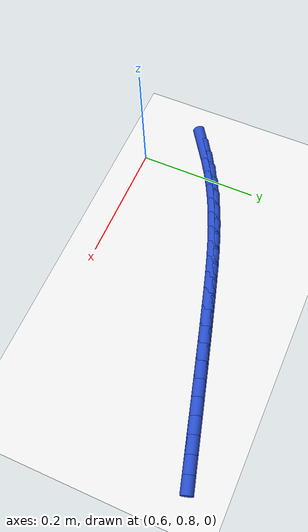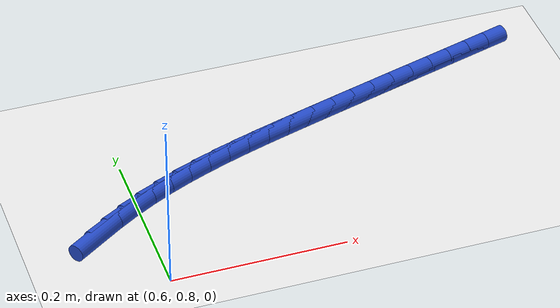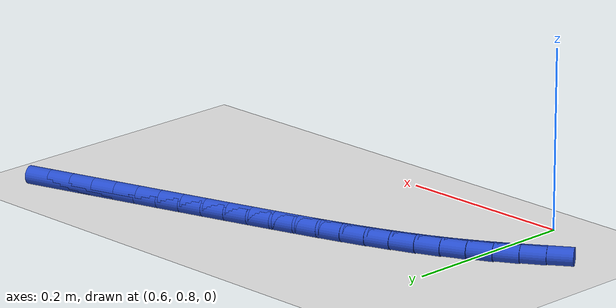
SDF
<sdf version="1.6">
 <world name="default">
  <model name="ground_plane">
   <static>1</static>
   <link name="link">
    <collision name="collision">
     <geometry><plane><normal>0 0 1</normal><size>100 100</size></plane></geometry>
     <surface><friction><ode><mu>100</mu><mu2>50</mu2></ode></friction></surface>
    </collision>
    <visual name="visual">
     <cast_shadows>0</cast_shadows>
     <geometry><plane><normal>0 0 1</normal><size>100 100</size></plane></geometry>
     <material>
      <script><uri>file://media/materials/scripts/gazebo.material</uri><name>Gazebo/WhiteGlow</name></script>
     </material>
    </visual>
   </link>
  </model>
  <model name="line">
   <link name="link_39">
    <pose>0.5456862348082888 0.8877988327917317 0.01 0 1.57 0.6042914383586098</pose>
    <collision name="collision">
     <geometry><cylinder><radius>0.01</radius><length>0.08</length></cylinder></geometry>
    </collision>
    <visual name="visual">
     <material>
      <script><name>Gazebo/Blue</name><uri>file://media/materials/scripts/gazebo.material</uri></script>
     </material>
     <geometry><cylinder><radius>0.01</radius><length>0.08</length></cylinder></geometry>
    </visual>
   </link>
   <link name="link_40">
    <pose>0.5684032880335538 0.9034839452018167 0.01 0 1.57 0.5632000857672532</pose>
    <collision name="collision">
     <geometry><cylinder><radius>0.01</radius><length>0.08</length></cylinder></geometry>
    </collision>
    <visual name="visual">
     <material>
      <script><name>Gazebo/Blue</name><uri>file://media/materials/scripts/gazebo.material</uri></script>
     </material>
     <geometry><cylinder><radius>0.01</radius><length>0.08</length></cylinder></geometry>
    </visual>
   </link>
   <link name="link_41">
    <pose>0.59169240700965 0.918189077843096 0.01 0 1.57 0.5182143457511004</pose>
    <collision name="collision">
     <geometry><cylinder><radius>0.01</radius><length>0.08</length></cylinder></geometry>
    </collision>
    <visual name="visual">
     <material>
      <script><name>Gazebo/Blue</name><uri>file://media/materials/scripts/gazebo.material</uri></script>
     </material>
     <geometry><cylinder><radius>0.01</radius><length>0.08</length></cylinder></geometry>
    </visual>
   </link>
   <link name="link_42">
    <pose>0.6155783056276274 0.9318086550353273 0.01 0 1.57 0.47098109817317413</pose>
    <collision name="collision">
     <geometry><cylinder><radius>0.01</radius><length>0.08</length></cylinder></geometry>
    </collision>
    <visual name="visual">
     <material>
      <script><name>Gazebo/Blue</name><uri>file://media/materials/scripts/gazebo.material</uri></script>
     </material>
     <geometry><cylinder><radius>0.01</radius><length>0.08</length></cylinder></geometry>
    </visual>
   </link>
   <link name="link_43">
    <pose>0.6400674185866904 0.9442785300454983 0.01 0 1.57 0.4280184535754709</pose>
    <collision name="collision">
     <geometry><cylinder><radius>0.01</radius><length>0.08</length></cylinder></geometry>
    </collision>
    <visual name="visual">
     <material>
      <script><name>Gazebo/Blue</name><uri>file://media/materials/scripts/gazebo.material</uri></script>
     </material>
     <geometry><cylinder><radius>0.01</radius><length>0.08</length></cylinder></geometry>
    </visual>
   </link>
   <link name="link_44">
    <pose>0.6650946873046958 0.9556965923731204 0.01 0 1.57 0.3909691670549991</pose>
    <collision name="collision">
     <geometry><cylinder><radius>0.01</radius><length>0.08</length></cylinder></geometry>
    </collision>
    <visual name="visual">
     <material>
      <script><name>Gazebo/Blue</name><uri>file://media/materials/scripts/gazebo.material</uri></script>
     </material>
     <geometry><cylinder><radius>0.01</radius><length>0.08</length></cylinder></geometry>
    </visual>
   </link>
   <link name="link_45">
    <pose>0.690577576778318 0.9662003410221667 0.01 0 1.57 0.3598194669974591</pose>
    <collision name="collision">
     <geometry><cylinder><radius>0.01</radius><length>0.08</length></cylinder></geometry>
    </collision>
    <visual name="visual">
     <material>
      <script><name>Gazebo/Blue</name><uri>file://media/materials/scripts/gazebo.material</uri></script>
     </material>
     <geometry><cylinder><radius>0.01</radius><length>0.08</length></cylinder></geometry>
    </visual>
   </link>
   <link name="link_46">
    <pose>0.7164335520042314 0.9759272749966104 0.01 0 1.57 0.33450394375181675</pose>
    <collision name="collision">
     <geometry><cylinder><radius>0.01</radius><length>0.08</length></cylinder></geometry>
    </collision>
    <visual name="visual">
     <material>
      <script><name>Gazebo/Blue</name><uri>file://media/materials/scripts/gazebo.material</uri></script>
     </material>
     <geometry><cylinder><radius>0.01</radius><length>0.08</length></cylinder></geometry>
    </visual>
   </link>
   <link name="link_47">
    <pose>0.7425800779791099 0.9850148933004245 0.01 0 1.57 0.31493787355434993</pose>
    <collision name="collision">
     <geometry><cylinder><radius>0.01</radius><length>0.08</length></cylinder></geometry>
    </collision>
    <visual name="visual">
     <material>
      <script><name>Gazebo/Blue</name><uri>file://media/materials/scripts/gazebo.material</uri></script>
     </material>
     <geometry><cylinder><radius>0.01</radius><length>0.08</length></cylinder></geometry>
    </visual>
   </link>
   <link name="link_48">
    <pose>0.7689346196996277 0.9936006949375817 0.01 0 1.57 0.3010423763997181</pose>
    <collision name="collision">
     <geometry><cylinder><radius>0.01</radius><length>0.08</length></cylinder></geometry>
    </collision>
    <visual name="visual">
     <material>
      <script><name>Gazebo/Blue</name><uri>file://media/materials/scripts/gazebo.material</uri></script>
     </material>
     <geometry><cylinder><radius>0.01</radius><length>0.08</length></cylinder></geometry>
    </visual>
   </link>
   <link name="link_49">
    <pose>0.7954146421624592 1.0018221789120556 0.01 0 1.57 0.29276291644287655</pose>
    <collision name="collision">
     <geometry><cylinder><radius>0.01</radius><length>0.08</length></cylinder></geometry>
    </collision>
    <visual name="visual">
     <material>
      <script><name>Gazebo/Blue</name><uri>file://media/materials/scripts/gazebo.material</uri></script>
     </material>
     <geometry><cylinder><radius>0.01</radius><length>0.08</length></cylinder></geometry>
    </visual>
   </link>
   <link name="link_50">
    <pose>0.8219376103642783 1.0098168442278193 0.01 0 1.57 0.2892614484721174</pose>
    <collision name="collision">
     <geometry><cylinder><radius>0.01</radius><length>0.08</length></cylinder></geometry>
    </collision>
    <visual name="visual">
     <material>
      <script><name>Gazebo/Blue</name><uri>file://media/materials/scripts/gazebo.material</uri></script>
     </material>
     <geometry><cylinder><radius>0.01</radius><length>0.08</length></cylinder></geometry>
    </visual>
   </link>
   <link name="link_51">
    <pose>0.8484354526333956 1.0177028311336134 0.01 0 1.57 0.28704382290385205</pose>
    <collision name="collision">
     <geometry><cylinder><radius>0.01</radius><length>0.08</length></cylinder></geometry>
    </collision>
    <visual name="visual">
     <material>
      <script><name>Gazebo/Blue</name><uri>file://media/materials/scripts/gazebo.material</uri></script>
     </material>
     <geometry><cylinder><radius>0.01</radius><length>0.08</length></cylinder></geometry>
    </visual>
   </link>
   <link name="link_52">
    <pose>0.8749018591012089 1.0255156134733148 0.01 0 1.57 0.2851813638733168</pose>
    <collision name="collision">
     <geometry><cylinder><radius>0.01</radius><length>0.08</length></cylinder></geometry>
    </collision>
    <visual name="visual">
     <material>
      <script><name>Gazebo/Blue</name><uri>file://media/materials/scripts/gazebo.material</uri></script>
     </material>
     <geometry><cylinder><radius>0.01</radius><length>0.08</length></cylinder></geometry>
    </visual>
   </link>
   <link name="link_53">
    <pose>0.9013470025895353 1.033268603481664 0.01 0 1.57 0.2836782668128358</pose>
    <collision name="collision">
     <geometry><cylinder><radius>0.01</radius><length>0.08</length></cylinder></geometry>
    </collision>
    <visual name="visual">
     <material>
      <script><name>Gazebo/Blue</name><uri>file://media/materials/scripts/gazebo.material</uri></script>
     </material>
     <geometry><cylinder><radius>0.01</radius><length>0.08</length></cylinder></geometry>
    </visual>
   </link>
   <link name="link_54">
    <pose>0.9277810560799484 1.04097521317957 0.01 0 1.57 0.28253768203652496</pose>
    <collision name="collision">
     <geometry><cylinder><radius>0.01</radius><length>0.08</length></cylinder></geometry>
    </collision>
    <visual name="visual">
     <material>
      <script><name>Gazebo/Blue</name><uri>file://media/materials/scripts/gazebo.material</uri></script>
     </material>
     <geometry><cylinder><radius>0.01</radius><length>0.08</length></cylinder></geometry>
    </visual>
   </link>
   <link name="link_55">
    <pose>0.954214192554023 1.0486488545879422 0.01 0 1.57 0.28176169145840424</pose>
    <collision name="collision">
     <geometry><cylinder><radius>0.01</radius><length>0.08</length></cylinder></geometry>
    </collision>
    <visual name="visual">
     <material>
      <script><name>Gazebo/Blue</name><uri>file://media/materials/scripts/gazebo.material</uri></script>
     </material>
     <geometry><cylinder><radius>0.01</radius><length>0.08</length></cylinder></geometry>
    </visual>
   </link>
   <link name="link_56">
    <pose>0.9806565849933325 1.0563029397276897 0.01 0 1.57 0.2813513008971866</pose>
    <collision name="collision">
     <geometry><cylinder><radius>0.01</radius><length>0.08</length></cylinder></geometry>
    </collision>
    <visual name="visual">
     <material>
      <script><name>Gazebo/Blue</name><uri>file://media/materials/scripts/gazebo.material</uri></script>
     </material>
     <geometry><cylinder><radius>0.01</radius><length>0.08</length></cylinder></geometry>
    </visual>
   </link>
   <link name="link_57">
    <pose>1.0071184063794512 1.0639508806197215 0.01 0 1.57 0.28130643890232543</pose>
    <collision name="collision">
     <geometry><cylinder><radius>0.01</radius><length>0.08</length></cylinder></geometry>
    </collision>
    <visual name="visual">
     <material>
      <script><name>Gazebo/Blue</name><uri>file://media/materials/scripts/gazebo.material</uri></script>
     </material>
     <geometry><cylinder><radius>0.01</radius><length>0.08</length></cylinder></geometry>
    </visual>
   </link>
   <link name="link_58">
    <pose>1.0336098296939533 1.0716060892849477 0.01 0 1.57 0.281625962046603</pose>
    <collision name="collision">
     <geometry><cylinder><radius>0.01</radius><length>0.08</length></cylinder></geometry>
    </collision>
    <visual name="visual">
     <material>
      <script><name>Gazebo/Blue</name><uri>file://media/materials/scripts/gazebo.material</uri></script>
     </material>
     <geometry><cylinder><radius>0.01</radius><length>0.08</length></cylinder></geometry>
    </visual>
   </link>
   <link name="link_59">
    <pose>1.0601410279184122 1.0792819777442761 0.01 0 1.57 0.28227147502520206</pose>
    <collision name="collision">
     <geometry><cylinder><radius>0.01</radius><length>0.08</length></cylinder></geometry>
    </collision>
    <visual name="visual">
     <material>
      <script><name>Gazebo/Blue</name><uri>file://media/materials/scripts/gazebo.material</uri></script>
     </material>
     <geometry><cylinder><radius>0.01</radius><length>0.08</length></cylinder></geometry>
    </visual>
   </link>
  </model>
 </world>
</sdf>
